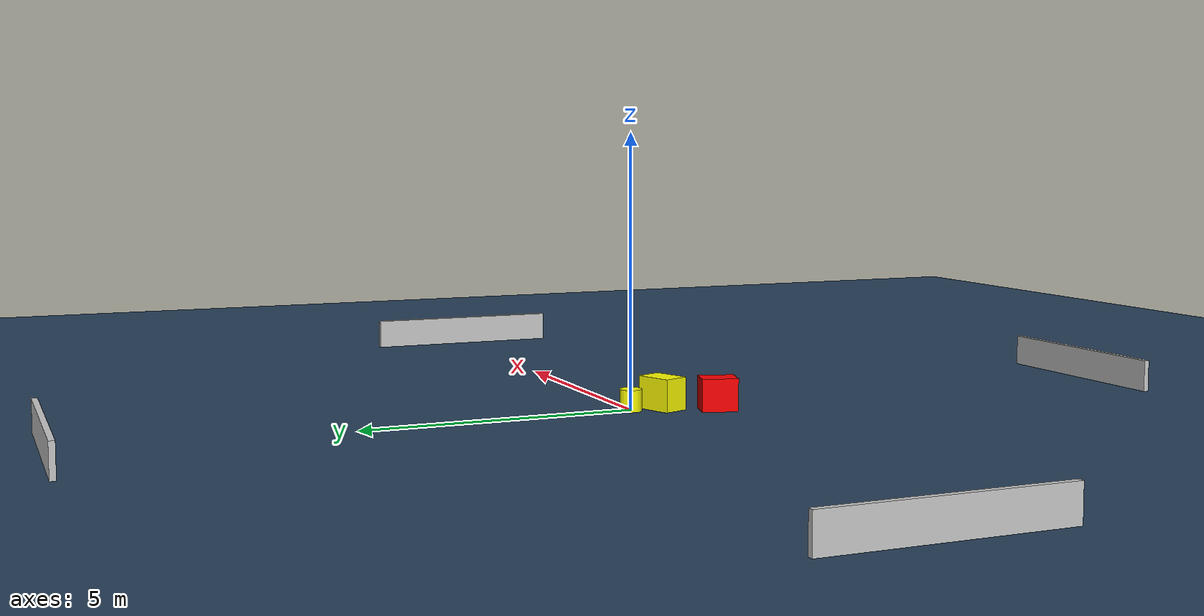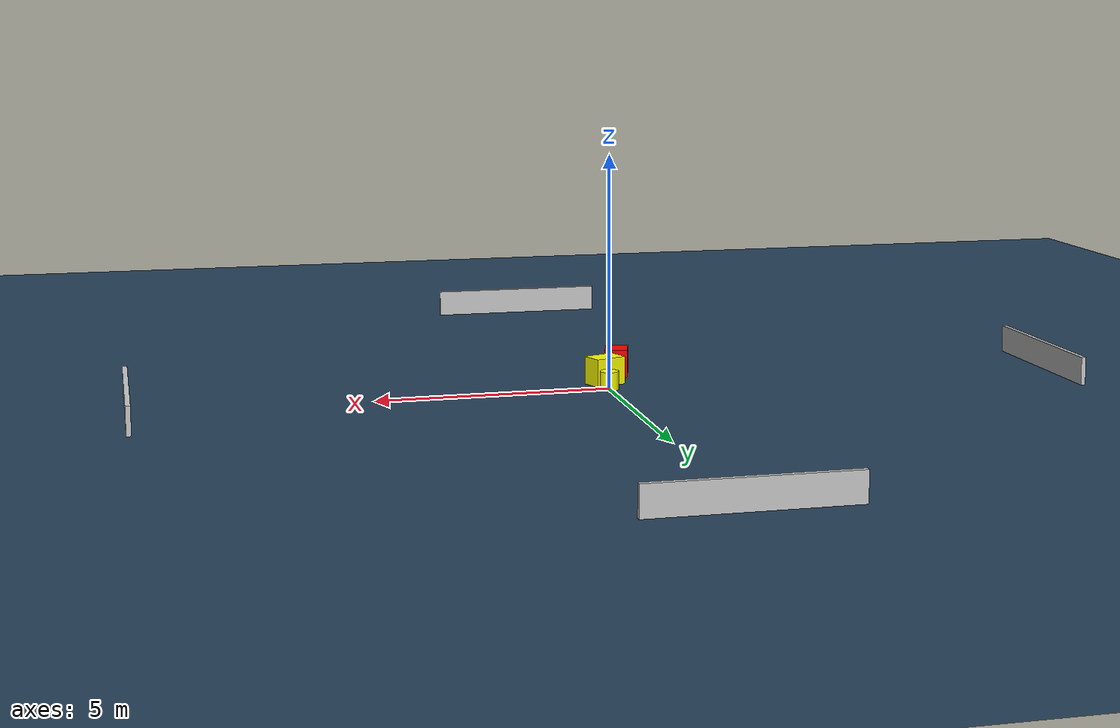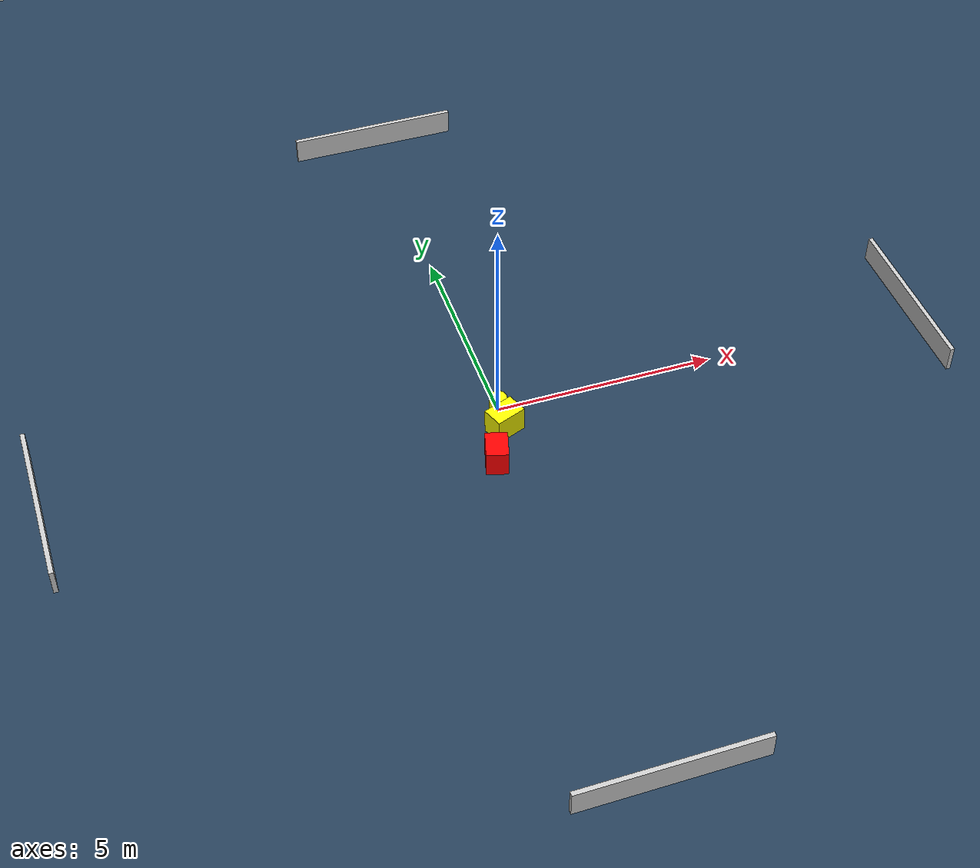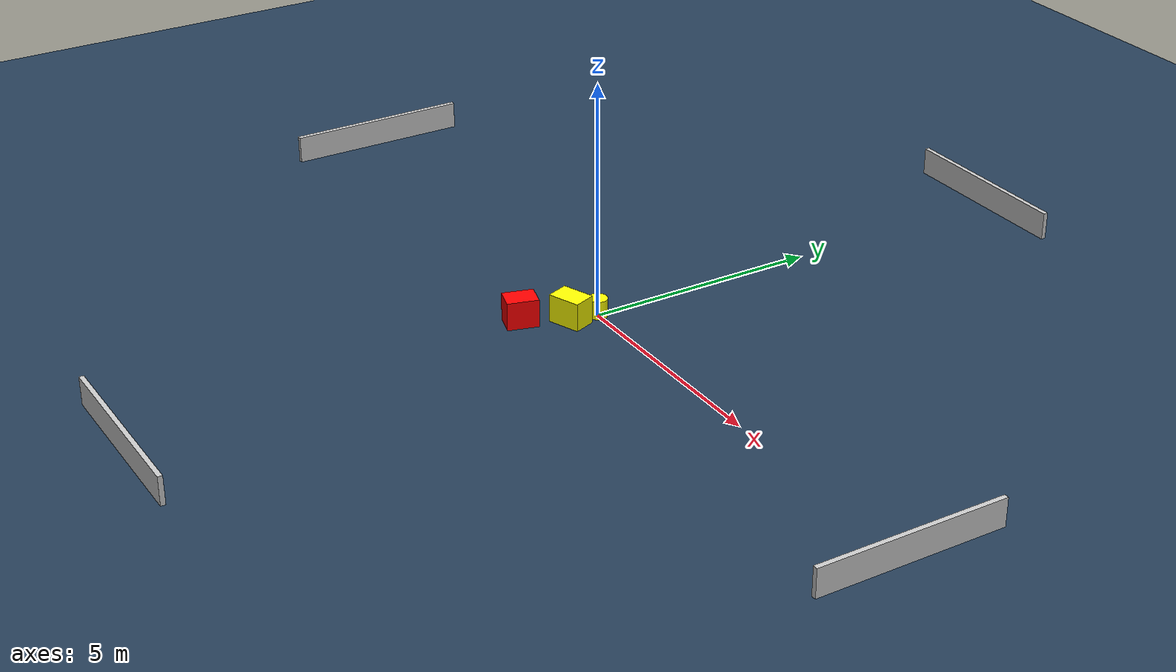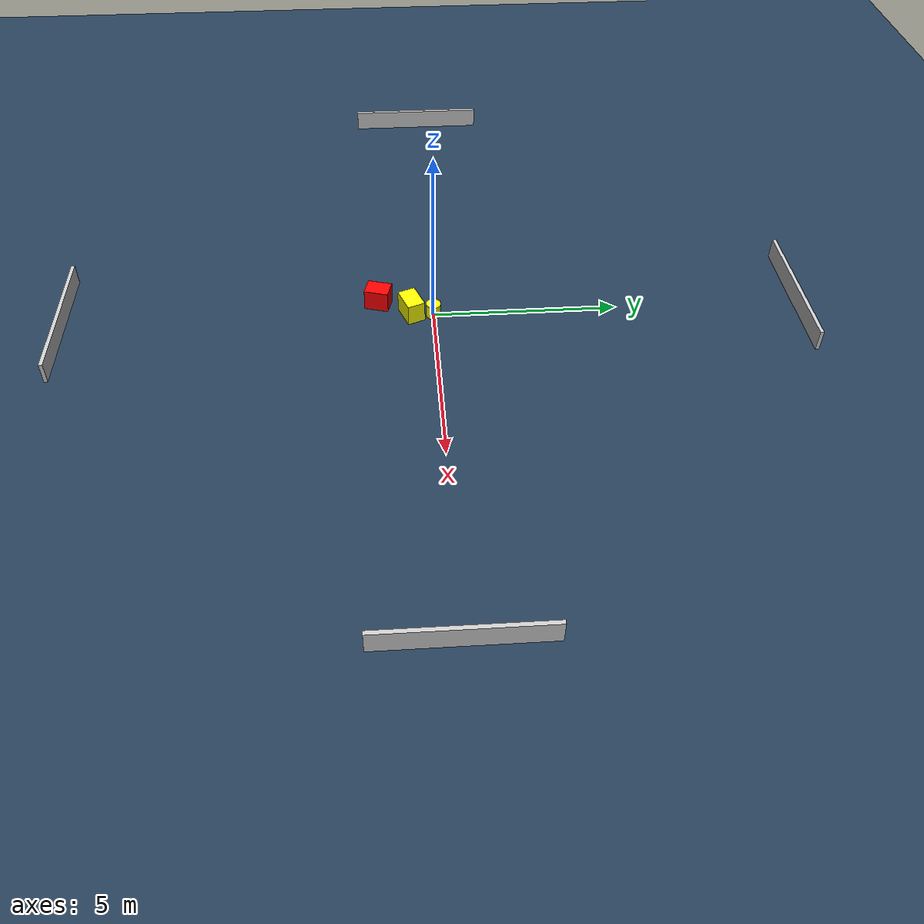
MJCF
<?xml version="1.0" ?>
<mujoco model="generated_environment">
  <option timestep="0.01" integrator="RK4" cone="elliptic"/>
  <default>
    <geom density="1"/>
  </default>
  <asset>
    <texture builtin="gradient" height="3072" name="skybox" rgb1="0.3 0.5 0.7" rgb2="0 0 0" type="skybox" width="512"/>
    <texture builtin="checker" height="300" name="groundplane" rgb1="0.2 0.3 0.4" rgb2="0.1 0.2 0.3" type="2d" width="300"/>
    <material name="groundplane" reflectance="0.2" texrepeat="5 5" texture="groundplane"/>
  </asset>
  <worldbody>
    <light dir="0 0 -1" directional="true" pos="0 0 1.5"/>
    <geom condim="3" friction="0.5 0.005 0.001" material="groundplane" name="floor" pos="0 0 0" size="0 0 0.05" type="plane"/>
    <body name="walls">
      <geom name="wall_1" condim="4" pos="-10.0 0.0 0.3" rgba="0.800000011920929 0.800000011920929 0.800000011920929 1.0" size="0.05 2.0 0.3" type="box"/>
      <geom name="wall_2" condim="4" pos="10.0 0.0 0.3" rgba="0.800000011920929 0.800000011920929 0.800000011920929 1.0" size="0.05 2.0 0.3" type="box"/>
      <geom name="wall_3" condim="4" pos="0.0 -10.0 0.3" rgba="0.800000011920929 0.800000011920929 0.800000011920929 1.0" size="2.0 0.05 0.3" type="box"/>
      <geom name="wall_4" condim="4" pos="0.0 10.0 0.3" rgba="0.800000011920929 0.800000011920929 0.800000011920929 1.0" size="2.0 0.05 0.3" type="box"/>
    </body>
    <body name="robot">
      <joint name="joint_x" type="slide" pos="0 0 0" axis="1 0 0"/>
      <joint name="joint_y" type="slide" pos="0 0 0" axis="0 1 0"/>
      <geom name="robot" type="cylinder" pos="0.0 0.0 0.2" size="0.2 0.2 0.0" mass="5.0" friction="1.0 0.005 0.0001" condim="4" rgba="1.0 1.0 0.0 1.0"/>
    </body>
    <body name="obstacle_1_movable">
      <geom name="obstacle_1_movable" condim="4" pos="-0.05090829327691753 -0.6006544949876956 0.3" euler="0 0 200.9461470375324" friction="0.0 0.005 0.001" rgba="1.0 1.0 0.0 1.0" size="0.3552404621193007 0.244438839781805 0.3" type="box" mass="0.1"/>
      <joint type="free"/>
    </body>
    <body name="obstacle_2_static">
      <geom name="obstacle_2_static" condim="4" pos="-0.5286336396436859 -1.4888791454009822 0.3" euler="0 0 344.25081013932316" friction="0.0 0.005 0.001" rgba="1.0 0.0 0.0 1.0" size="0.24546776218441224 0.32988881611457077 0.3" type="box"/>
    </body>
  </worldbody>
  <actuator>
    <motor name="actuator_x" joint="joint_x" gear="1" ctrlrange="-1 1"/>
    <motor name="actuator_y" joint="joint_y" gear="1" ctrlrange="-1 1"/>
  </actuator>
</mujoco>
